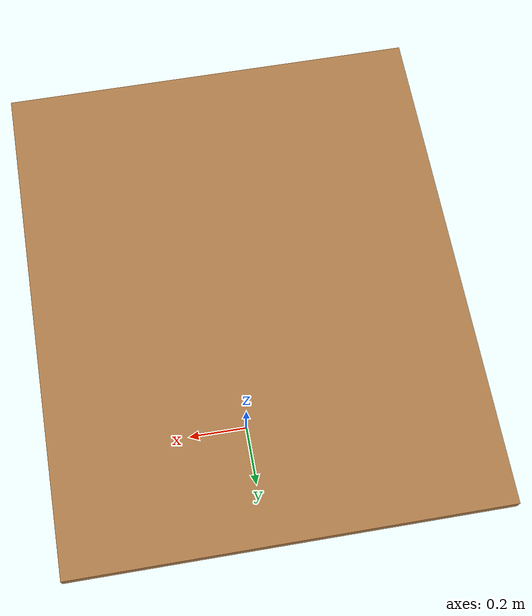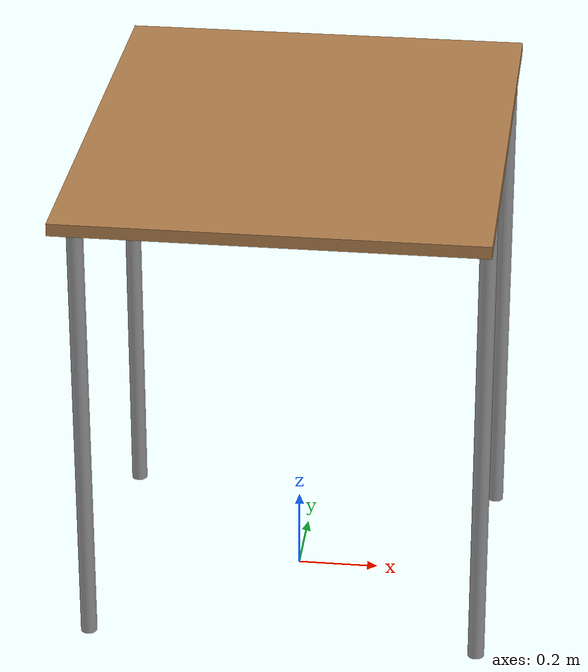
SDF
<?xml version="1.0" ?>
<sdf version='1.4'>
<model name='table'>
      <static>1</static>
      <link name='link'>
        <collision name='surface'>
          <pose>0.000000 0.000000 1.200000 0.000000 0.000000 0.000000</pose>
          <geometry>
            <box>
              <size>1.000000 1.200000 0.030000</size>
            </box>
          </geometry>
          <surface>
            <bounce/>
            <friction>
              <ode/>
            </friction>
            <contact>
              <ode/>
            </contact>
          </surface>
        </collision>
        <visual name='visual1'>
          <pose>0.000000 0.000000 1.200000 0.000000 0.000000 0.000000</pose>
          <geometry>
            <box>
              <size>1.000000 1.200000 0.030000</size>
            </box>
          </geometry>
          <material>
            <script>
              <uri>file://media/materials/scripts/gazebo.material</uri>
              <name>Gazebo/Wood</name>
            </script>
          </material>
        </visual>
        <collision name='front_left_leg'>
          <pose>0.480000 0.380000 0.600000 0.000000 0.000000 0.000000</pose>
          <geometry>
            <cylinder>
              <radius>0.020000</radius>
              <length>1.200000</length>
            </cylinder>
          </geometry>
          <surface>
            <bounce/>
            <friction>
              <ode/>
            </friction>
            <contact>
              <ode/>
            </contact>
          </surface>
        </collision>
        <visual name='front_left_leg'>
          <pose>0.480000 0.380000 0.600000 0.000000 0.000000 0.000000</pose>
          <geometry>
            <cylinder>
              <radius>0.020000</radius>
              <length>1.200000</length>
            </cylinder>
          </geometry>
          <material>
            <script>
              <uri>file://media/materials/scripts/gazebo.material</uri>
              <name>Gazebo/Grey</name>
            </script>
          </material>
        </visual>
        <collision name='front_right_leg'>
          <pose>0.480000 -0.380000 0.600000 0.000000 0.000000 0.000000</pose>
          <geometry>
            <cylinder>
              <radius>0.020000</radius>
              <length>1.200000</length>
            </cylinder>
          </geometry>
          <surface>
            <bounce/>
            <friction>
              <ode/>
            </friction>
            <contact>
              <ode/>
            </contact>
          </surface>
        </collision>
        <visual name='front_right_leg'>
          <pose>0.480000 -0.380000 0.600000 0.000000 0.000000 0.000000</pose>
          <geometry>
            <cylinder>
              <radius>0.020000</radius>
              <length>1.200000</length>
            </cylinder>
          </geometry>
          <material>
            <script>
              <uri>file://media/materials/scripts/gazebo.material</uri>
              <name>Gazebo/Grey</name>
            </script>
          </material>
        </visual>
        <collision name='back_right_leg'>
          <pose>-0.480000 -0.380000 0.600000 0.000000 0.000000 0.000000</pose>
          <geometry>
            <cylinder>
              <radius>0.020000</radius>
              <length>1.200000</length>
            </cylinder>
          </geometry>
          <surface>
            <bounce/>
            <friction>
              <ode/>
            </friction>
            <contact>
              <ode/>
            </contact>
          </surface>
        </collision>
        <visual name='back_right_leg'>
          <pose>-0.480000 -0.380000 0.600000 0.000000 0.000000 0.000000</pose>
          <geometry>
            <cylinder>
              <radius>0.020000</radius>
              <length>1.200000</length>
            </cylinder>
          </geometry>
          <material>
            <script>
              <uri>file://media/materials/scripts/gazebo.material</uri>
              <name>Gazebo/Grey</name>
            </script>
          </material>
        </visual>
        <collision name='back_left_leg'>
          <pose>-0.480000 0.380000 0.600000 0.000000 0.000000 0.000000</pose>
          <geometry>
            <cylinder>
              <radius>0.020000</radius>
              <length>1.200000</length>
            </cylinder>
          </geometry>
          <surface>
            <bounce/>
            <friction>
              <ode/>
            </friction>
            <contact>
              <ode/>
            </contact>
          </surface>
        </collision>
        <visual name='back_left_leg'>
          <pose>-0.480000 0.380000 0.600000 0.000000 0.000000 0.000000</pose>
          <geometry>
            <cylinder>
              <radius>0.020000</radius>
              <length>1.200000</length>
            </cylinder>
          </geometry>
          <material>
            <script>
              <uri>file://media/materials/scripts/gazebo.material</uri>
              <name>Gazebo/Grey</name>
            </script>
          </material>
        </visual>
        <velocity_decay>
          <linear>0.000000</linear>
          <angular>0.000000</angular>
        </velocity_decay>
        <self_collide>0</self_collide>
        <kinematic>0</kinematic>
        <gravity>1</gravity>
      </link>
    </model>
</sdf>
